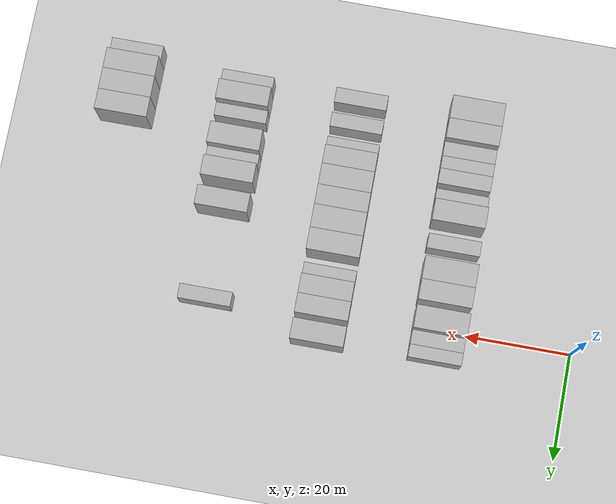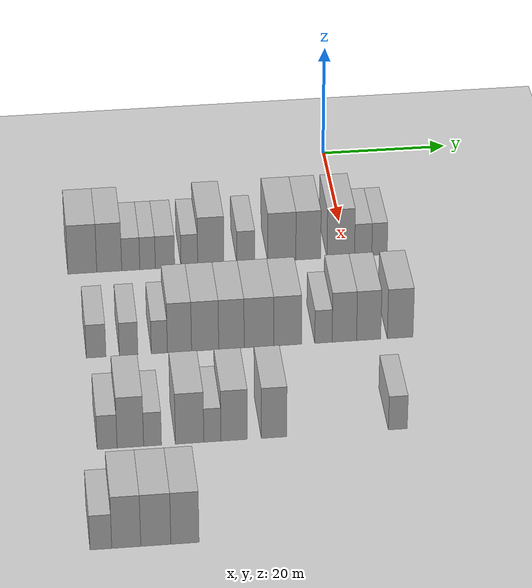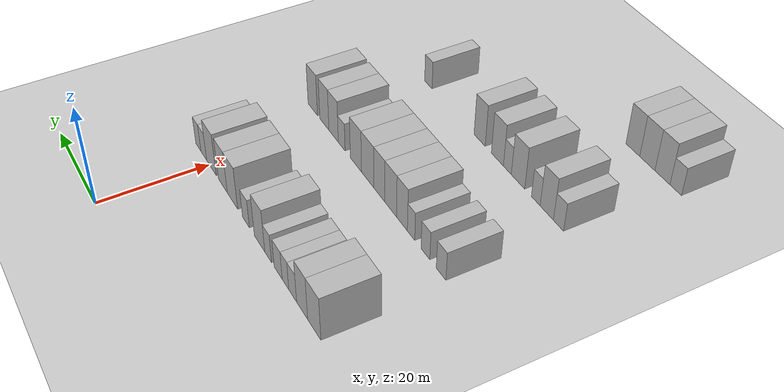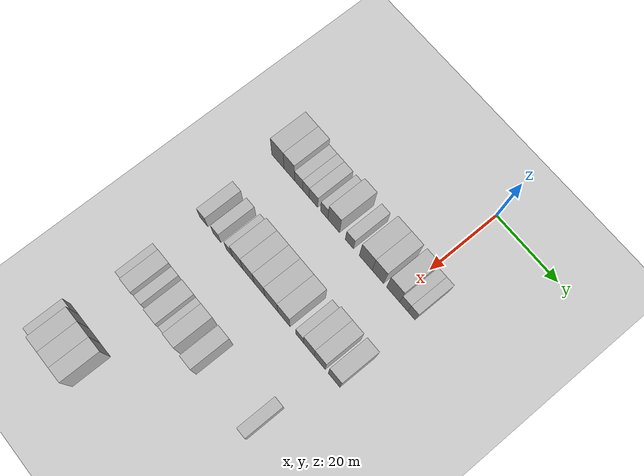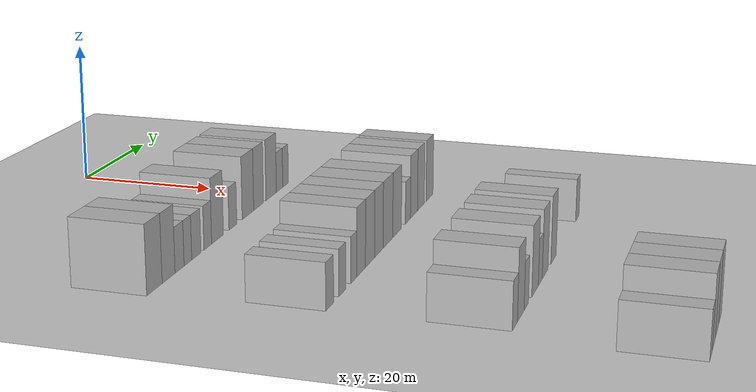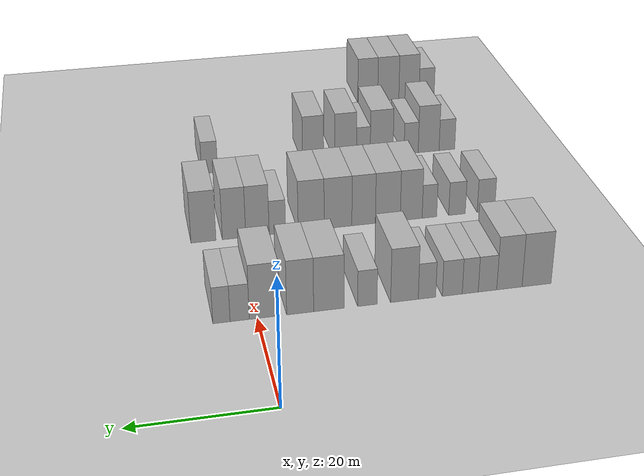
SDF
<sdf version="1.6">
 <world name="default">
  <include><name>ground_plane_1</name><uri>model://HANNAS_ground_plane</uri></include>
  <model name="building_85">
   <static>1</static>
   <pose>25.0000 -41.2952 0 0.000000 0.000000 0.000000</pose>
   <link name="link">
    <pose>0 0 4.50 0 0 0</pose>
    <collision name="collision"><geometry><box><size>10.0000 4.4728 9.0000</size></box></geometry></collision>
    <visual name="visual">
     <cast_shadows>0</cast_shadows>
     <geometry><box><size>10.0000 4.4728 9.0000</size></box></geometry>
     <material>
      <script>
       <uri>model://HANNAS_wall/materials/scripts</uri>
       <uri>model://HANNAS_wall/materials/textures</uri>
       <name>vrc/HANNAS_wall</name>
      </script>
     </material>
    </visual>
   </link>
  </model>
  <model name="building_86">
   <static>1</static>
   <pose>25.0000 -37.1239 0 0.000000 0.000000 0.000000</pose>
   <link name="link">
    <pose>0 0 4.50 0 0 0</pose>
    <collision name="collision"><geometry><box><size>10.0000 3.8698 9.0000</size></box></geometry></collision>
    <visual name="visual">
     <cast_shadows>0</cast_shadows>
     <geometry><box><size>10.0000 3.8698 9.0000</size></box></geometry>
     <material>
      <script>
       <uri>model://HANNAS_wall/materials/scripts</uri>
       <uri>model://HANNAS_wall/materials/textures</uri>
       <name>vrc/HANNAS_wall</name>
      </script>
     </material>
    </visual>
   </link>
  </model>
  <model name="building_87">
   <static>1</static>
   <pose>25.0000 -33.7815 0 0.000000 0.000000 0.000000</pose>
   <link name="link">
    <pose>0 0 3.00 0 0 0</pose>
    <collision name="collision"><geometry><box><size>10.0000 2.8150 6.0000</size></box></geometry></collision>
    <visual name="visual">
     <cast_shadows>0</cast_shadows>
     <geometry><box><size>10.0000 2.8150 6.0000</size></box></geometry>
     <material>
      <script>
       <uri>model://HANNAS_wall/materials/scripts</uri>
       <uri>model://HANNAS_wall/materials/textures</uri>
       <name>vrc/HANNAS_wall</name>
      </script>
     </material>
    </visual>
   </link>
  </model>
  <model name="building_88">
   <static>1</static>
   <pose>25.0000 -31.1665 0 0.000000 0.000000 0.000000</pose>
   <link name="link">
    <pose>0 0 3.00 0 0 0</pose>
    <collision name="collision"><geometry><box><size>10.0000 2.4151 6.0000</size></box></geometry></collision>
    <visual name="visual">
     <cast_shadows>0</cast_shadows>
     <geometry><box><size>10.0000 2.4151 6.0000</size></box></geometry>
     <material>
      <script>
       <uri>model://HANNAS_wall/materials/scripts</uri>
       <uri>model://HANNAS_wall/materials/textures</uri>
       <name>vrc/HANNAS_wall</name>
      </script>
     </material>
    </visual>
   </link>
  </model>
  <model name="building_89">
   <static>1</static>
   <pose>25.0000 -28.4608 0 0.000000 0.000000 0.000000</pose>
   <link name="link">
    <pose>0 0 3.00 0 0 0</pose>
    <collision name="collision"><geometry><box><size>10.0000 2.9962 6.0000</size></box></geometry></collision>
    <visual name="visual">
     <cast_shadows>0</cast_shadows>
     <geometry><box><size>10.0000 2.9962 6.0000</size></box></geometry>
     <material>
      <script>
       <uri>model://HANNAS_wall/materials/scripts</uri>
       <uri>model://HANNAS_wall/materials/textures</uri>
       <name>vrc/HANNAS_wall</name>
      </script>
     </material>
    </visual>
   </link>
  </model>
  <model name="building_90">
   <static>1</static>
   <pose>25.0000 -24.6631 0 0.000000 0.000000 0.000000</pose>
   <link name="link">
    <pose>0 0 3.00 0 0 0</pose>
    <collision name="collision"><geometry><box><size>10.0000 2.5992 6.0000</size></box></geometry></collision>
    <visual name="visual">
     <cast_shadows>0</cast_shadows>
     <geometry><box><size>10.0000 2.5992 6.0000</size></box></geometry>
     <material>
      <script>
       <uri>model://HANNAS_wall/materials/scripts</uri>
       <uri>model://HANNAS_wall/materials/textures</uri>
       <name>vrc/HANNAS_wall</name>
      </script>
     </material>
    </visual>
   </link>
  </model>
  <model name="building_91">
   <static>1</static>
   <pose>25.0000 -21.3167 0 0.000000 0.000000 0.000000</pose>
   <link name="link">
    <pose>0 0 4.50 0 0 0</pose>
    <collision name="collision"><geometry><box><size>10.0000 4.0937 9.0000</size></box></geometry></collision>
    <visual name="visual">
     <cast_shadows>0</cast_shadows>
     <geometry><box><size>10.0000 4.0937 9.0000</size></box></geometry>
     <material>
      <script>
       <uri>model://HANNAS_wall/materials/scripts</uri>
       <uri>model://HANNAS_wall/materials/textures</uri>
       <name>vrc/HANNAS_wall</name>
      </script>
     </material>
    </visual>
   </link>
  </model>
  <model name="building_92">
   <static>1</static>
   <pose>25.0000 -15.8494 0 0.000000 0.000000 0.000000</pose>
   <link name="link">
    <pose>0 0 3.00 0 0 0</pose>
    <collision name="collision"><geometry><box><size>10.0000 2.8408 6.0000</size></box></geometry></collision>
    <visual name="visual">
     <cast_shadows>0</cast_shadows>
     <geometry><box><size>10.0000 2.8408 6.0000</size></box></geometry>
     <material>
      <script>
       <uri>model://HANNAS_wall/materials/scripts</uri>
       <uri>model://HANNAS_wall/materials/textures</uri>
       <name>vrc/HANNAS_wall</name>
      </script>
     </material>
    </visual>
   </link>
  </model>
  <model name="building_93">
   <static>1</static>
   <pose>25.0000 -10.2284 0 0.000000 0.000000 0.000000</pose>
   <link name="link">
    <pose>0 0 4.50 0 0 0</pose>
    <collision name="collision"><geometry><box><size>10.0000 4.4011 9.0000</size></box></geometry></collision>
    <visual name="visual">
     <cast_shadows>0</cast_shadows>
     <geometry><box><size>10.0000 4.4011 9.0000</size></box></geometry>
     <material>
      <script>
       <uri>model://HANNAS_wall/materials/scripts</uri>
       <uri>model://HANNAS_wall/materials/textures</uri>
       <name>vrc/HANNAS_wall</name>
      </script>
     </material>
    </visual>
   </link>
  </model>
  <model name="building_94">
   <static>1</static>
   <pose>25.0000 -6.0852 0 0.000000 0.000000 0.000000</pose>
   <link name="link">
    <pose>0 0 4.50 0 0 0</pose>
    <collision name="collision"><geometry><box><size>10.0000 3.8854 9.0000</size></box></geometry></collision>
    <visual name="visual">
     <cast_shadows>0</cast_shadows>
     <geometry><box><size>10.0000 3.8854 9.0000</size></box></geometry>
     <material>
      <script>
       <uri>model://HANNAS_wall/materials/scripts</uri>
       <uri>model://HANNAS_wall/materials/textures</uri>
       <name>vrc/HANNAS_wall</name>
      </script>
     </material>
    </visual>
   </link>
  </model>
  <model name="building_95">
   <static>1</static>
   <pose>25.0000 -0.9787 0 0.000000 0.000000 0.000000</pose>
   <link name="link">
    <pose>0 0 4.50 0 0 0</pose>
    <collision name="collision"><geometry><box><size>10.0000 4.3275 9.0000</size></box></geometry></collision>
    <visual name="visual">
     <cast_shadows>0</cast_shadows>
     <geometry><box><size>10.0000 4.3275 9.0000</size></box></geometry>
     <material>
      <script>
       <uri>model://HANNAS_wall/materials/scripts</uri>
       <uri>model://HANNAS_wall/materials/textures</uri>
       <name>vrc/HANNAS_wall</name>
      </script>
     </material>
    </visual>
   </link>
  </model>
  <model name="building_96">
   <static>1</static>
   <pose>25.0000 2.5434 0 0.000000 0.000000 0.000000</pose>
   <link name="link">
    <pose>0 0 3.00 0 0 0</pose>
    <collision name="collision"><geometry><box><size>10.0000 2.7167 6.0000</size></box></geometry></collision>
    <visual name="visual">
     <cast_shadows>0</cast_shadows>
     <geometry><box><size>10.0000 2.7167 6.0000</size></box></geometry>
     <material>
      <script>
       <uri>model://HANNAS_wall/materials/scripts</uri>
       <uri>model://HANNAS_wall/materials/textures</uri>
       <name>vrc/HANNAS_wall</name>
      </script>
     </material>
    </visual>
   </link>
  </model>
  <model name="building_97">
   <static>1</static>
   <pose>25.0000 5.1150 0 0.000000 0.000000 0.000000</pose>
   <link name="link">
    <pose>0 0 3.00 0 0 0</pose>
    <collision name="collision"><geometry><box><size>10.0000 2.4267 6.0000</size></box></geometry></collision>
    <visual name="visual">
     <cast_shadows>0</cast_shadows>
     <geometry><box><size>10.0000 2.4267 6.0000</size></box></geometry>
     <material>
      <script>
       <uri>model://HANNAS_wall/materials/scripts</uri>
       <uri>model://HANNAS_wall/materials/textures</uri>
       <name>vrc/HANNAS_wall</name>
      </script>
     </material>
    </visual>
   </link>
  </model>
  <model name="building_282">
   <static>1</static>
   <pose>47.0000 -40.4966 0 0.000000 0.000000 0.000000</pose>
   <link name="link">
    <pose>0 0 3.00 0 0 0</pose>
    <collision name="collision"><geometry><box><size>10.0000 2.9390 6.0000</size></box></geometry></collision>
    <visual name="visual">
     <cast_shadows>0</cast_shadows>
     <geometry><box><size>10.0000 2.9390 6.0000</size></box></geometry>
     <material>
      <script>
       <uri>model://HANNAS_wall/materials/scripts</uri>
       <uri>model://HANNAS_wall/materials/textures</uri>
       <name>vrc/HANNAS_wall</name>
      </script>
     </material>
    </visual>
   </link>
  </model>
  <model name="building_283">
   <static>1</static>
   <pose>47.0000 -35.6408 0 0.000000 0.000000 0.000000</pose>
   <link name="link">
    <pose>0 0 3.00 0 0 0</pose>
    <collision name="collision"><geometry><box><size>10.0000 2.7726 6.0000</size></box></geometry></collision>
    <visual name="visual">
     <cast_shadows>0</cast_shadows>
     <geometry><box><size>10.0000 2.7726 6.0000</size></box></geometry>
     <material>
      <script>
       <uri>model://HANNAS_wall/materials/scripts</uri>
       <uri>model://HANNAS_wall/materials/textures</uri>
       <name>vrc/HANNAS_wall</name>
      </script>
     </material>
    </visual>
   </link>
  </model>
  <model name="building_284">
   <static>1</static>
   <pose>47.0000 -31.0491 0 0.000000 0.000000 0.000000</pose>
   <link name="link">
    <pose>0 0 3.00 0 0 0</pose>
    <collision name="collision"><geometry><box><size>10.0000 2.4108 6.0000</size></box></geometry></collision>
    <visual name="visual">
     <cast_shadows>0</cast_shadows>
     <geometry><box><size>10.0000 2.4108 6.0000</size></box></geometry>
     <material>
      <script>
       <uri>model://HANNAS_wall/materials/scripts</uri>
       <uri>model://HANNAS_wall/materials/textures</uri>
       <name>vrc/HANNAS_wall</name>
      </script>
     </material>
    </visual>
   </link>
  </model>
  <model name="building_285">
   <static>1</static>
   <pose>47.0000 -28.0377 0 0.000000 0.000000 0.000000</pose>
   <link name="link">
    <pose>0 0 4.50 0 0 0</pose>
    <collision name="collision"><geometry><box><size>10.0000 3.6120 9.0000</size></box></geometry></collision>
    <visual name="visual">
     <cast_shadows>0</cast_shadows>
     <geometry><box><size>10.0000 3.6120 9.0000</size></box></geometry>
     <material>
      <script>
       <uri>model://HANNAS_wall/materials/scripts</uri>
       <uri>model://HANNAS_wall/materials/textures</uri>
       <name>vrc/HANNAS_wall</name>
      </script>
     </material>
    </visual>
   </link>
  </model>
  <model name="building_286">
   <static>1</static>
   <pose>47.0000 -24.1980 0 0.000000 0.000000 0.000000</pose>
   <link name="link">
    <pose>0 0 4.50 0 0 0</pose>
    <collision name="collision"><geometry><box><size>10.0000 4.0673 9.0000</size></box></geometry></collision>
    <visual name="visual">
     <cast_shadows>0</cast_shadows>
     <geometry><box><size>10.0000 4.0673 9.0000</size></box></geometry>
     <material>
      <script>
       <uri>model://HANNAS_wall/materials/scripts</uri>
       <uri>model://HANNAS_wall/materials/textures</uri>
       <name>vrc/HANNAS_wall</name>
      </script>
     </material>
    </visual>
   </link>
  </model>
  <model name="building_287">
   <static>1</static>
   <pose>47.0000 -20.2529 0 0.000000 0.000000 0.000000</pose>
   <link name="link">
    <pose>0 0 4.50 0 0 0</pose>
    <collision name="collision"><geometry><box><size>10.0000 3.8229 9.0000</size></box></geometry></collision>
    <visual name="visual">
     <cast_shadows>0</cast_shadows>
     <geometry><box><size>10.0000 3.8229 9.0000</size></box></geometry>
     <material>
      <script>
       <uri>model://HANNAS_wall/materials/scripts</uri>
       <uri>model://HANNAS_wall/materials/textures</uri>
       <name>vrc/HANNAS_wall</name>
      </script>
     </material>
    </visual>
   </link>
  </model>
  <model name="building_288">
   <static>1</static>
   <pose>47.0000 -16.1085 0 0.000000 0.000000 0.000000</pose>
   <link name="link">
    <pose>0 0 4.50 0 0 0</pose>
    <collision name="collision"><geometry><box><size>10.0000 4.4660 9.0000</size></box></geometry></collision>
    <visual name="visual">
     <cast_shadows>0</cast_shadows>
     <geometry><box><size>10.0000 4.4660 9.0000</size></box></geometry>
     <material>
      <script>
       <uri>model://HANNAS_wall/materials/scripts</uri>
       <uri>model://HANNAS_wall/materials/textures</uri>
       <name>vrc/HANNAS_wall</name>
      </script>
     </material>
    </visual>
   </link>
  </model>
  <model name="building_289">
   <static>1</static>
   <pose>47.0000 -11.7904 0 0.000000 0.000000 0.000000</pose>
   <link name="link">
    <pose>0 0 4.50 0 0 0</pose>
    <collision name="collision"><geometry><box><size>10.0000 4.1702 9.0000</size></box></geometry></collision>
    <visual name="visual">
     <cast_shadows>0</cast_shadows>
     <geometry><box><size>10.0000 4.1702 9.0000</size></box></geometry>
     <material>
      <script>
       <uri>model://HANNAS_wall/materials/scripts</uri>
       <uri>model://HANNAS_wall/materials/textures</uri>
       <name>vrc/HANNAS_wall</name>
      </script>
     </material>
    </visual>
   </link>
  </model>
  <model name="building_290">
   <static>1</static>
   <pose>47.0000 -6.3978 0 0.000000 0.000000 0.000000</pose>
   <link name="link">
    <pose>0 0 3.00 0 0 0</pose>
    <collision name="collision"><geometry><box><size>10.0000 2.6151 6.0000</size></box></geometry></collision>
    <visual name="visual">
     <cast_shadows>0</cast_shadows>
     <geometry><box><size>10.0000 2.6151 6.0000</size></box></geometry>
     <material>
      <script>
       <uri>model://HANNAS_wall/materials/scripts</uri>
       <uri>model://HANNAS_wall/materials/textures</uri>
       <name>vrc/HANNAS_wall</name>
      </script>
     </material>
    </visual>
   </link>
  </model>
  <model name="building_291">
   <static>1</static>
   <pose>47.0000 -3.2429 0 0.000000 0.000000 0.000000</pose>
   <link name="link">
    <pose>0 0 4.50 0 0 0</pose>
    <collision name="collision"><geometry><box><size>10.0000 3.6947 9.0000</size></box></geometry></collision>
    <visual name="visual">
     <cast_shadows>0</cast_shadows>
     <geometry><box><size>10.0000 3.6947 9.0000</size></box></geometry>
     <material>
      <script>
       <uri>model://HANNAS_wall/materials/scripts</uri>
       <uri>model://HANNAS_wall/materials/textures</uri>
       <name>vrc/HANNAS_wall</name>
      </script>
     </material>
    </visual>
   </link>
  </model>
  <model name="building_292">
   <static>1</static>
   <pose>47.0000 0.4340 0 0.000000 0.000000 0.000000</pose>
   <link name="link">
    <pose>0 0 4.50 0 0 0</pose>
    <collision name="collision"><geometry><box><size>10.0000 3.6590 9.0000</size></box></geometry></collision>
    <visual name="visual">
     <cast_shadows>0</cast_shadows>
     <geometry><box><size>10.0000 3.6590 9.0000</size></box></geometry>
     <material>
      <script>
       <uri>model://HANNAS_wall/materials/scripts</uri>
       <uri>model://HANNAS_wall/materials/textures</uri>
       <name>vrc/HANNAS_wall</name>
      </script>
     </material>
    </visual>
   </link>
  </model>
  <model name="building_293">
   <static>1</static>
   <pose>47.0000 5.2074 0 0.000000 0.000000 0.000000</pose>
   <link name="link">
    <pose>0 0 4.50 0 0 0</pose>
    <collision name="collision"><geometry><box><size>10.0000 3.8877 9.0000</size></box></geometry></collision>
    <visual name="visual">
     <cast_shadows>0</cast_shadows>
     <geometry><box><size>10.0000 3.8877 9.0000</size></box></geometry>
     <material>
      <script>
       <uri>model://HANNAS_wall/materials/scripts</uri>
       <uri>model://HANNAS_wall/materials/textures</uri>
       <name>vrc/HANNAS_wall</name>
      </script>
     </material>
    </visual>
   </link>
  </model>
  <model name="building_466">
   <static>1</static>
   <pose>69.0000 -40.2603 0 0.000000 0.000000 0.000000</pose>
   <link name="link">
    <pose>0 0 3.00 0 0 0</pose>
    <collision name="collision"><geometry><box><size>10.0000 2.8595 6.0000</size></box></geometry></collision>
    <visual name="visual">
     <cast_shadows>0</cast_shadows>
     <geometry><box><size>10.0000 2.8595 6.0000</size></box></geometry>
     <material>
      <script>
       <uri>model://HANNAS_wall/materials/scripts</uri>
       <uri>model://HANNAS_wall/materials/textures</uri>
       <name>vrc/HANNAS_wall</name>
      </script>
     </material>
    </visual>
   </link>
  </model>
  <model name="building_467">
   <static>1</static>
   <pose>69.0000 -36.9285 0 0.000000 0.000000 0.000000</pose>
   <link name="link">
    <pose>0 0 4.50 0 0 0</pose>
    <collision name="collision"><geometry><box><size>10.0000 3.8042 9.0000</size></box></geometry></collision>
    <visual name="visual">
     <cast_shadows>0</cast_shadows>
     <geometry><box><size>10.0000 3.8042 9.0000</size></box></geometry>
     <material>
      <script>
       <uri>model://HANNAS_wall/materials/scripts</uri>
       <uri>model://HANNAS_wall/materials/textures</uri>
       <name>vrc/HANNAS_wall</name>
      </script>
     </material>
    </visual>
   </link>
  </model>
  <model name="building_468">
   <static>1</static>
   <pose>69.0000 -33.7433 0 0.000000 0.000000 0.000000</pose>
   <link name="link">
    <pose>0 0 3.00 0 0 0</pose>
    <collision name="collision"><geometry><box><size>10.0000 2.5661 6.0000</size></box></geometry></collision>
    <visual name="visual">
     <cast_shadows>0</cast_shadows>
     <geometry><box><size>10.0000 2.5661 6.0000</size></box></geometry>
     <material>
      <script>
       <uri>model://HANNAS_wall/materials/scripts</uri>
       <uri>model://HANNAS_wall/materials/textures</uri>
       <name>vrc/HANNAS_wall</name>
      </script>
     </material>
    </visual>
   </link>
  </model>
  <model name="building_469">
   <static>1</static>
   <pose>69.0000 -28.4157 0 0.000000 0.000000 0.000000</pose>
   <link name="link">
    <pose>0 0 4.50 0 0 0</pose>
    <collision name="collision"><geometry><box><size>10.0000 4.0891 9.0000</size></box></geometry></collision>
    <visual name="visual">
     <cast_shadows>0</cast_shadows>
     <geometry><box><size>10.0000 4.0891 9.0000</size></box></geometry>
     <material>
      <script>
       <uri>model://HANNAS_wall/materials/scripts</uri>
       <uri>model://HANNAS_wall/materials/textures</uri>
       <name>vrc/HANNAS_wall</name>
      </script>
     </material>
    </visual>
   </link>
  </model>
  <model name="building_470">
   <static>1</static>
   <pose>69.0000 -25.1430 0 0.000000 0.000000 0.000000</pose>
   <link name="link">
    <pose>0 0 3.00 0 0 0</pose>
    <collision name="collision"><geometry><box><size>10.0000 2.4563 6.0000</size></box></geometry></collision>
    <visual name="visual">
     <cast_shadows>0</cast_shadows>
     <geometry><box><size>10.0000 2.4563 6.0000</size></box></geometry>
     <material>
      <script>
       <uri>model://HANNAS_wall/materials/scripts</uri>
       <uri>model://HANNAS_wall/materials/textures</uri>
       <name>vrc/HANNAS_wall</name>
      </script>
     </material>
    </visual>
   </link>
  </model>
  <model name="building_471">
   <static>1</static>
   <pose>69.0000 -21.9995 0 0.000000 0.000000 0.000000</pose>
   <link name="link">
    <pose>0 0 4.50 0 0 0</pose>
    <collision name="collision"><geometry><box><size>10.0000 3.8306 9.0000</size></box></geometry></collision>
    <visual name="visual">
     <cast_shadows>0</cast_shadows>
     <geometry><box><size>10.0000 3.8306 9.0000</size></box></geometry>
     <material>
      <script>
       <uri>model://HANNAS_wall/materials/scripts</uri>
       <uri>model://HANNAS_wall/materials/textures</uri>
       <name>vrc/HANNAS_wall</name>
      </script>
     </material>
    </visual>
   </link>
  </model>
  <model name="building_472">
   <static>1</static>
   <pose>69.0000 -16.2408 0 0.000000 0.000000 0.000000</pose>
   <link name="link">
    <pose>0 0 4.50 0 0 0</pose>
    <collision name="collision"><geometry><box><size>10.0000 3.6868 9.0000</size></box></geometry></collision>
    <visual name="visual">
     <cast_shadows>0</cast_shadows>
     <geometry><box><size>10.0000 3.6868 9.0000</size></box></geometry>
     <material>
      <script>
       <uri>model://HANNAS_wall/materials/scripts</uri>
       <uri>model://HANNAS_wall/materials/textures</uri>
       <name>vrc/HANNAS_wall</name>
      </script>
     </material>
    </visual>
   </link>
  </model>
  <model name="building_473">
   <static>1</static>
   <pose>69.0000 1.7168 0 0.000000 0.000000 0.000000</pose>
   <link name="link">
    <pose>0 0 3.00 0 0 0</pose>
    <collision name="collision"><geometry><box><size>10.0000 2.7428 6.0000</size></box></geometry></collision>
    <visual name="visual">
     <cast_shadows>0</cast_shadows>
     <geometry><box><size>10.0000 2.7428 6.0000</size></box></geometry>
     <material>
      <script>
       <uri>model://HANNAS_wall/materials/scripts</uri>
       <uri>model://HANNAS_wall/materials/textures</uri>
       <name>vrc/HANNAS_wall</name>
      </script>
     </material>
    </visual>
   </link>
  </model>
  <model name="building_654">
   <static>1</static>
   <pose>91.0000 -42.5249 0 0.000000 0.000000 0.000000</pose>
   <link name="link">
    <pose>0 0 3.00 0 0 0</pose>
    <collision name="collision"><geometry><box><size>10.0000 2.9943 6.0000</size></box></geometry></collision>
    <visual name="visual">
     <cast_shadows>0</cast_shadows>
     <geometry><box><size>10.0000 2.9943 6.0000</size></box></geometry>
     <material>
      <script>
       <uri>model://HANNAS_wall/materials/scripts</uri>
       <uri>model://HANNAS_wall/materials/textures</uri>
       <name>vrc/HANNAS_wall</name>
      </script>
     </material>
    </visual>
   </link>
  </model>
  <model name="building_655">
   <static>1</static>
   <pose>91.0000 -39.0352 0 0.000000 0.000000 0.000000</pose>
   <link name="link">
    <pose>0 0 4.50 0 0 0</pose>
    <collision name="collision"><geometry><box><size>10.0000 3.9850 9.0000</size></box></geometry></collision>
    <visual name="visual">
     <cast_shadows>0</cast_shadows>
     <geometry><box><size>10.0000 3.9850 9.0000</size></box></geometry>
     <material>
      <script>
       <uri>model://HANNAS_wall/materials/scripts</uri>
       <uri>model://HANNAS_wall/materials/textures</uri>
       <name>vrc/HANNAS_wall</name>
      </script>
     </material>
    </visual>
   </link>
  </model>
  <model name="building_656">
   <static>1</static>
   <pose>91.0000 -34.9693 0 0.000000 0.000000 0.000000</pose>
   <link name="link">
    <pose>0 0 4.50 0 0 0</pose>
    <collision name="collision"><geometry><box><size>10.0000 4.1468 9.0000</size></box></geometry></collision>
    <visual name="visual">
     <cast_shadows>0</cast_shadows>
     <geometry><box><size>10.0000 4.1468 9.0000</size></box></geometry>
     <material>
      <script>
       <uri>model://HANNAS_wall/materials/scripts</uri>
       <uri>model://HANNAS_wall/materials/textures</uri>
       <name>vrc/HANNAS_wall</name>
      </script>
     </material>
    </visual>
   </link>
  </model>
  <model name="building_657">
   <static>1</static>
   <pose>91.0000 -30.9564 0 0.000000 0.000000 0.000000</pose>
   <link name="link">
    <pose>0 0 4.50 0 0 0</pose>
    <collision name="collision"><geometry><box><size>10.0000 3.8790 9.0000</size></box></geometry></collision>
    <visual name="visual">
     <cast_shadows>0</cast_shadows>
     <geometry><box><size>10.0000 3.8790 9.0000</size></box></geometry>
     <material>
      <script>
       <uri>model://HANNAS_wall/materials/scripts</uri>
       <uri>model://HANNAS_wall/materials/textures</uri>
       <name>vrc/HANNAS_wall</name>
      </script>
     </material>
    </visual>
   </link>
  </model>
 </world>
</sdf>
